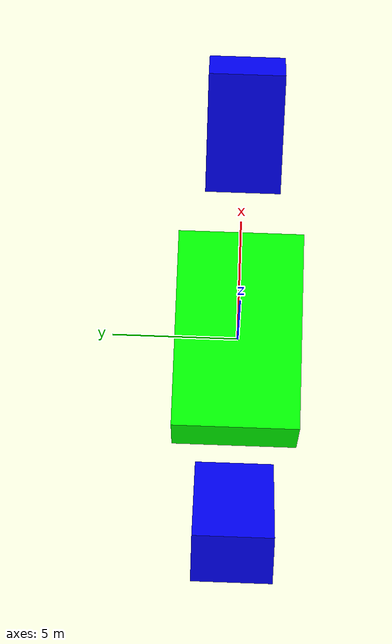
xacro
<?xml version="1.0"?>
<robot name="rabbit" xmlns:xacro="http://ros.org/wiki/xacro">
	<xacro:property name="pi" value="3.1415926" />

	<!-- * * * Link Definitions * * * -->
	<link name="base_link">
		<visual>
			<origin xyz="0 0 0" rpy="0 0 0"/>
			<geometry>
				<box size="8 5 3"/>
			</geometry>
			<material name="green">
				<color rgba="0 1 0 1.0"/>
			</material>
		</visual>
  	</link>

	<link name="ear1">
		<visual>
		    <origin xyz="0 0 0" rpy="0 0 0"/>
			<geometry>
				<box size="5 3 2"/>
			</geometry>
			<material name="blue">
	       		<color rgba="0 0 1 1.0"/>
	     	</material>
		</visual>
	</link>

	<link name="ear2">
		<visual>
		    <origin xyz="0 0 0" rpy="0 0 0"/>
			<geometry>
				<box size="5 3 2"/>
			</geometry>
			<material name="blue">
	       		<color rgba="0 0 1 1.0"/>
	     	</material>
		</visual>
	</link>

	<!-- * * * Joint Definitions * * * -->
	<joint name="j_ear1_base" type="fixed">
    	<parent link="base_link"/>
    	<child link="ear1"/>
    	<origin xyz="-8 0 3" rpy="0 ${pi/4} 0"/>
	</joint>

	<joint name="j_ear2_base" type="fixed">
    	<parent link="base_link"/>
    	<child link="ear2"/>
    	<origin xyz="8 0 3" rpy="0 ${-pi/4} 0"/>
	</joint>
</robot>
